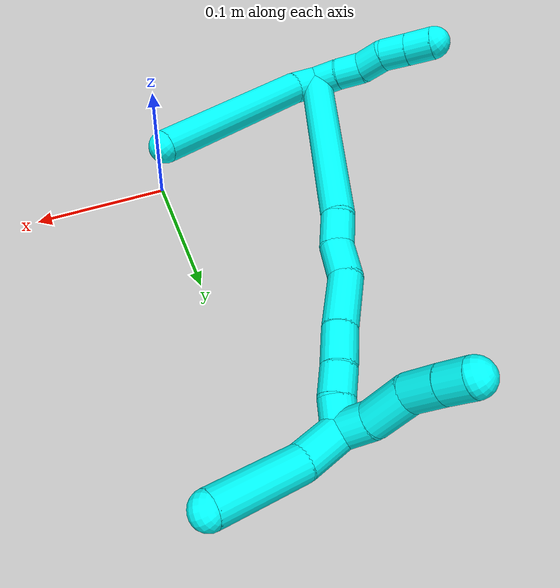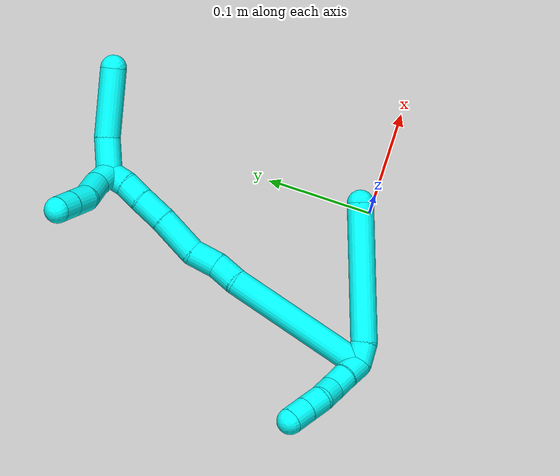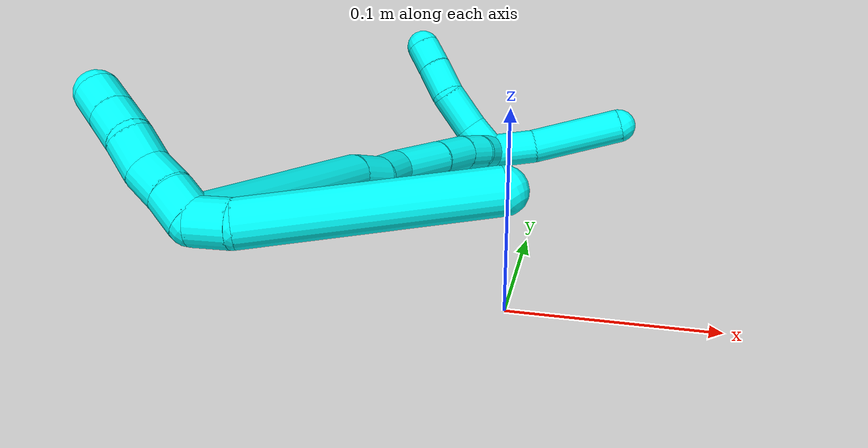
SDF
<sdf version="1.7">
 <world name="default">
  <model name="3">
   <static>0</static>
   <link name="3">
    <collision name="collision-cylinder-e_1_2_8">
     <pose>0.006964 0.003383 -0.006723 -2.67543 0.746601 -2.05177</pose>
     <geometry><cylinder><radius>0.0125</radius><length>0.020507</length></cylinder></geometry>
     <surface>
      <friction><ode><mu>1.16</mu><mu2>1.16</mu2><slip1>0</slip1><slip2>0</slip2></ode></friction>
      <contact><ode><kp>1e+06</kp><kd>1</kd><max_vel>0</max_vel><min_depth>0.001</min_depth></ode></contact>
     </surface>
    </collision>
    <visual name="visual-cylinder-e_1_2_8">
     <pose>0.006964 0.003383 -0.006723 -2.67543 0.746601 -2.05177</pose>
     <geometry><cylinder><radius>0.0125</radius><length>0.020507</length></cylinder></geometry>
     <material><ambient>0.003922 1 0.996078 1</ambient></material>
    </visual>
    <collision name="collision-cylinder-e_2_8_6">
     <pose>0.057292 0.044292 -0.043502 -2.24611 0.733887 -1.34982</pose>
     <geometry><cylinder><radius>0.0125</radius><length>0.129493</length></cylinder></geometry>
     <surface>
      <friction><ode><mu>1.16</mu><mu2>1.16</mu2><slip1>0</slip1><slip2>0</slip2></ode></friction>
      <contact><ode><kp>1e+06</kp><kd>1</kd><max_vel>0</max_vel><min_depth>0.001</min_depth></ode></contact>
     </surface>
    </collision>
    <visual name="visual-cylinder-e_2_8_6">
     <pose>0.057292 0.044292 -0.043502 -2.24611 0.733887 -1.34982</pose>
     <geometry><cylinder><radius>0.0125</radius><length>0.129493</length></cylinder></geometry>
     <material><ambient>0.003922 1 0.996078 1</ambient></material>
    </visual>
    <collision name="collision-cylinder-e_1_2_9">
     <pose>-0.001957 0.001058 0.009749 -0.108143 -0.196955 0.010695</pose>
     <geometry><cylinder><radius>0.0125</radius><length>0.02</length></cylinder></geometry>
     <surface>
      <friction><ode><mu>1.16</mu><mu2>1.16</mu2><slip1>0</slip1><slip2>0</slip2></ode></friction>
      <contact><ode><kp>1e+06</kp><kd>1</kd><max_vel>0</max_vel><min_depth>0.001</min_depth></ode></contact>
     </surface>
    </collision>
    <visual name="visual-cylinder-e_1_2_9">
     <pose>-0.001957 0.001058 0.009749 -0.108143 -0.196955 0.010695</pose>
     <geometry><cylinder><radius>0.0125</radius><length>0.02</length></cylinder></geometry>
     <material><ambient>0.003922 1 0.996078 1</ambient></material>
    </visual>
    <collision name="collision-cylinder-e_2_9_10">
     <pose>-0.006934 0.003165 0.028974 -0.110148 -0.306875 0.017052</pose>
     <geometry><cylinder><radius>0.0125</radius><length>0.02</length></cylinder></geometry>
     <surface>
      <friction><ode><mu>1.16</mu><mu2>1.16</mu2><slip1>0</slip1><slip2>0</slip2></ode></friction>
      <contact><ode><kp>1e+06</kp><kd>1</kd><max_vel>0</max_vel><min_depth>0.001</min_depth></ode></contact>
     </surface>
    </collision>
    <visual name="visual-cylinder-e_2_9_10">
     <pose>-0.006934 0.003165 0.028974 -0.110148 -0.306875 0.017052</pose>
     <geometry><cylinder><radius>0.0125</radius><length>0.02</length></cylinder></geometry>
     <material><ambient>0.003922 1 0.996078 1</ambient></material>
    </visual>
    <collision name="collision-cylinder-e_3_10_11">
     <pose>-0.009925 0.004604 0.048441 -0.039147 0.003065 -6e-05</pose>
     <geometry><cylinder><radius>0.0125</radius><length>0.02</length></cylinder></geometry>
     <surface>
      <friction><ode><mu>1.16</mu><mu2>1.16</mu2><slip1>0</slip1><slip2>0</slip2></ode></friction>
      <contact><ode><kp>1e+06</kp><kd>1</kd><max_vel>0</max_vel><min_depth>0.001</min_depth></ode></contact>
     </surface>
    </collision>
    <visual name="visual-cylinder-e_3_10_11">
     <pose>-0.009925 0.004604 0.048441 -0.039147 0.003065 -6e-05</pose>
     <geometry><cylinder><radius>0.0125</radius><length>0.02</length></cylinder></geometry>
     <material><ambient>0.003922 1 0.996078 1</ambient></material>
    </visual>
    <collision name="collision-cylinder-e_4_11_12">
     <pose>-0.012261 0.007122 0.067914 -0.220682 -0.239015 0.026606</pose>
     <geometry><cylinder><radius>0.0125</radius><length>0.02</length></cylinder></geometry>
     <surface>
      <friction><ode><mu>1.16</mu><mu2>1.16</mu2><slip1>0</slip1><slip2>0</slip2></ode></friction>
      <contact><ode><kp>1e+06</kp><kd>1</kd><max_vel>0</max_vel><min_depth>0.001</min_depth></ode></contact>
     </surface>
    </collision>
    <visual name="visual-cylinder-e_4_11_12">
     <pose>-0.012261 0.007122 0.067914 -0.220682 -0.239015 0.026606</pose>
     <geometry><cylinder><radius>0.0125</radius><length>0.02</length></cylinder></geometry>
     <material><ambient>0.003922 1 0.996078 1</ambient></material>
    </visual>
    <collision name="collision-cylinder-e_5_12_5">
     <pose>-0.016921 0.011263 0.086917 -0.208465 -0.231285 0.024302</pose>
     <geometry><cylinder><radius>0.0125</radius><length>0.02</length></cylinder></geometry>
     <surface>
      <friction><ode><mu>1.16</mu><mu2>1.16</mu2><slip1>0</slip1><slip2>0</slip2></ode></friction>
      <contact><ode><kp>1e+06</kp><kd>1</kd><max_vel>0</max_vel><min_depth>0.001</min_depth></ode></contact>
     </surface>
    </collision>
    <visual name="visual-cylinder-e_5_12_5">
     <pose>-0.016921 0.011263 0.086917 -0.208465 -0.231285 0.024302</pose>
     <geometry><cylinder><radius>0.0125</radius><length>0.02</length></cylinder></geometry>
     <material><ambient>0.003922 1 0.996078 1</ambient></material>
    </visual>
    <collision name="collision-cylinder-e_1_2_13">
     <pose>0.001407 0.06863 0.002226 -1.53837 0.020488 -0.019834</pose>
     <geometry><cylinder><radius>0.0125</radius><length>0.137362</length></cylinder></geometry>
     <surface>
      <friction><ode><mu>1.16</mu><mu2>1.16</mu2><slip1>0</slip1><slip2>0</slip2></ode></friction>
      <contact><ode><kp>1e+06</kp><kd>1</kd><max_vel>0</max_vel><min_depth>0.001</min_depth></ode></contact>
     </surface>
    </collision>
    <visual name="visual-cylinder-e_1_2_13">
     <pose>0.001407 0.06863 0.002226 -1.53837 0.020488 -0.019834</pose>
     <geometry><cylinder><radius>0.0125</radius><length>0.137362</length></cylinder></geometry>
     <material><ambient>0.003922 1 0.996078 1</ambient></material>
    </visual>
    <collision name="collision-cylinder-e_2_13_14">
     <pose>0.002638 0.149265 0.002136 -1.76147 -0.014434 0.017486</pose>
     <geometry><cylinder><radius>0.0125</radius><length>0.024454</length></cylinder></geometry>
     <surface>
      <friction><ode><mu>1.16</mu><mu2>1.16</mu2><slip1>0</slip1><slip2>0</slip2></ode></friction>
      <contact><ode><kp>1e+06</kp><kd>1</kd><max_vel>0</max_vel><min_depth>0.001</min_depth></ode></contact>
     </surface>
    </collision>
    <visual name="visual-cylinder-e_2_13_14">
     <pose>0.002638 0.149265 0.002136 -1.76147 -0.014434 0.017486</pose>
     <geometry><cylinder><radius>0.0125</radius><length>0.024454</length></cylinder></geometry>
     <material><ambient>0.003922 1 0.996078 1</ambient></material>
    </visual>
    <collision name="collision-cylinder-e_3_14_15">
     <pose>0.00175 0.17454 0.001237 -1.46438 -0.053224 0.047844</pose>
     <geometry><cylinder><radius>0.0125</radius><length>0.02673</length></cylinder></geometry>
     <surface>
      <friction><ode><mu>1.16</mu><mu2>1.16</mu2><slip1>0</slip1><slip2>0</slip2></ode></friction>
      <contact><ode><kp>1e+06</kp><kd>1</kd><max_vel>0</max_vel><min_depth>0.001</min_depth></ode></contact>
     </surface>
    </collision>
    <visual name="visual-cylinder-e_3_14_15">
     <pose>0.00175 0.17454 0.001237 -1.46438 -0.053224 0.047844</pose>
     <geometry><cylinder><radius>0.0125</radius><length>0.02673</length></cylinder></geometry>
     <material><ambient>0.003922 1 0.996078 1</ambient></material>
    </visual>
    <collision name="collision-cylinder-e_4_15_16">
     <pose>0.0055 0.208134 0.000545 -1.67418 0.214972 -0.23822</pose>
     <geometry><cylinder><radius>0.0125</radius><length>0.041828</length></cylinder></geometry>
     <surface>
      <friction><ode><mu>1.16</mu><mu2>1.16</mu2><slip1>0</slip1><slip2>0</slip2></ode></friction>
      <contact><ode><kp>1e+06</kp><kd>1</kd><max_vel>0</max_vel><min_depth>0.001</min_depth></ode></contact>
     </surface>
    </collision>
    <visual name="visual-cylinder-e_4_15_16">
     <pose>0.0055 0.208134 0.000545 -1.67418 0.214972 -0.23822</pose>
     <geometry><cylinder><radius>0.0125</radius><length>0.041828</length></cylinder></geometry>
     <material><ambient>0.003922 1 0.996078 1</ambient></material>
    </visual>
    <collision name="collision-cylinder-e_5_16_17">
     <pose>0.012021 0.242431 -0.002445 -1.63379 0.146027 -0.155491</pose>
     <geometry><cylinder><radius>0.0125</radius><length>0.028303</length></cylinder></geometry>
     <surface>
      <friction><ode><mu>1.16</mu><mu2>1.16</mu2><slip1>0</slip1><slip2>0</slip2></ode></friction>
      <contact><ode><kp>1e+06</kp><kd>1</kd><max_vel>0</max_vel><min_depth>0.001</min_depth></ode></contact>
     </surface>
    </collision>
    <visual name="visual-cylinder-e_5_16_17">
     <pose>0.012021 0.242431 -0.002445 -1.63379 0.146027 -0.155491</pose>
     <geometry><cylinder><radius>0.0125</radius><length>0.028303</length></cylinder></geometry>
     <material><ambient>0.003922 1 0.996078 1</ambient></material>
    </visual>
    <collision name="collision-cylinder-e_6_17_18">
     <pose>0.015177 0.266754 -0.004984 -1.7296 0.10427 -0.122256</pose>
     <geometry><cylinder><radius>0.0125</radius><length>0.021079</length></cylinder></geometry>
     <surface>
      <friction><ode><mu>1.16</mu><mu2>1.16</mu2><slip1>0</slip1><slip2>0</slip2></ode></friction>
      <contact><ode><kp>1e+06</kp><kd>1</kd><max_vel>0</max_vel><min_depth>0.001</min_depth></ode></contact>
     </surface>
    </collision>
    <visual name="visual-cylinder-e_6_17_18">
     <pose>0.015177 0.266754 -0.004984 -1.7296 0.10427 -0.122256</pose>
     <geometry><cylinder><radius>0.0125</radius><length>0.021079</length></cylinder></geometry>
     <material><ambient>0.003922 1 0.996078 1</ambient></material>
    </visual>
    <collision name="collision-cylinder-e_7_18_1">
     <pose>0.015587 0.287193 -0.007087 -1.61492 -0.067968 0.071033</pose>
     <geometry><cylinder><radius>0.0125</radius><length>0.020243</length></cylinder></geometry>
     <surface>
      <friction><ode><mu>1.16</mu><mu2>1.16</mu2><slip1>0</slip1><slip2>0</slip2></ode></friction>
      <contact><ode><kp>1e+06</kp><kd>1</kd><max_vel>0</max_vel><min_depth>0.001</min_depth></ode></contact>
     </surface>
    </collision>
    <visual name="visual-cylinder-e_7_18_1">
     <pose>0.015587 0.287193 -0.007087 -1.61492 -0.067968 0.071033</pose>
     <geometry><cylinder><radius>0.0125</radius><length>0.020243</length></cylinder></geometry>
     <material><ambient>0.003922 1 0.996078 1</ambient></material>
    </visual>
    <collision name="collision-cylinder-e_1_1_19">
     <pose>0.025891 0.307594 -0.015208 -2.21069 0.707433 -1.26789</pose>
     <geometry><cylinder><radius>0.0125</radius><length>0.033827</length></cylinder></geometry>
     <surface>
      <friction><ode><mu>1.16</mu><mu2>1.16</mu2><slip1>0</slip1><slip2>0</slip2></ode></friction>
      <contact><ode><kp>1e+06</kp><kd>1</kd><max_vel>0</max_vel><min_depth>0.001</min_depth></ode></contact>
     </surface>
    </collision>
    <visual name="visual-cylinder-e_1_1_19">
     <pose>0.025891 0.307594 -0.015208 -2.21069 0.707433 -1.26789</pose>
     <geometry><cylinder><radius>0.0125</radius><length>0.033827</length></cylinder></geometry>
     <material><ambient>0.003922 1 0.996078 1</ambient></material>
    </visual>
    <collision name="collision-cylinder-e_2_19_4">
     <pose>0.0633 0.332796 -0.036116 -2.29732 0.924696 -1.67464</pose>
     <geometry><cylinder><radius>0.0125</radius><length>0.066173</length></cylinder></geometry>
     <surface>
      <friction><ode><mu>1.16</mu><mu2>1.16</mu2><slip1>0</slip1><slip2>0</slip2></ode></friction>
      <contact><ode><kp>1e+06</kp><kd>1</kd><max_vel>0</max_vel><min_depth>0.001</min_depth></ode></contact>
     </surface>
    </collision>
    <visual name="visual-cylinder-e_2_19_4">
     <pose>0.0633 0.332796 -0.036116 -2.29732 0.924696 -1.67464</pose>
     <geometry><cylinder><radius>0.0125</radius><length>0.066173</length></cylinder></geometry>
     <material><ambient>0.003922 1 0.996078 1</ambient></material>
    </visual>
    <collision name="collision-cylinder-e_1_1_20">
     <pose>0.014696 0.297112 0.004364 0.014319 -0.017069 -0.000122</pose>
     <geometry><cylinder><radius>0.0125</radius><length>0.023798</length></cylinder></geometry>
     <surface>
      <friction><ode><mu>1.16</mu><mu2>1.16</mu2><slip1>0</slip1><slip2>0</slip2></ode></friction>
      <contact><ode><kp>1e+06</kp><kd>1</kd><max_vel>0</max_vel><min_depth>0.001</min_depth></ode></contact>
     </surface>
    </collision>
    <visual name="visual-cylinder-e_1_1_20">
     <pose>0.014696 0.297112 0.004364 0.014319 -0.017069 -0.000122</pose>
     <geometry><cylinder><radius>0.0125</radius><length>0.023798</length></cylinder></geometry>
     <material><ambient>0.003922 1 0.996078 1</ambient></material>
    </visual>
    <collision name="collision-cylinder-e_2_20_21">
     <pose>0.016922 0.293732 0.031354 0.209477 0.156121 0.016445</pose>
     <geometry><cylinder><radius>0.0125</radius><length>0.031243</length></cylinder></geometry>
     <surface>
      <friction><ode><mu>1.16</mu><mu2>1.16</mu2><slip1>0</slip1><slip2>0</slip2></ode></friction>
      <contact><ode><kp>1e+06</kp><kd>1</kd><max_vel>0</max_vel><min_depth>0.001</min_depth></ode></contact>
     </surface>
    </collision>
    <visual name="visual-cylinder-e_2_20_21">
     <pose>0.016922 0.293732 0.031354 0.209477 0.156121 0.016445</pose>
     <geometry><cylinder><radius>0.0125</radius><length>0.031243</length></cylinder></geometry>
     <material><ambient>0.003922 1 0.996078 1</ambient></material>
    </visual>
    <collision name="collision-cylinder-e_3_21_22">
     <pose>0.021216 0.292114 0.058653 -0.129557 0.1504 -0.009775</pose>
     <geometry><cylinder><radius>0.0125</radius><length>0.024897</length></cylinder></geometry>
     <surface>
      <friction><ode><mu>1.16</mu><mu2>1.16</mu2><slip1>0</slip1><slip2>0</slip2></ode></friction>
      <contact><ode><kp>1e+06</kp><kd>1</kd><max_vel>0</max_vel><min_depth>0.001</min_depth></ode></contact>
     </surface>
    </collision>
    <visual name="visual-cylinder-e_3_21_22">
     <pose>0.021216 0.292114 0.058653 -0.129557 0.1504 -0.009775</pose>
     <geometry><cylinder><radius>0.0125</radius><length>0.024897</length></cylinder></geometry>
     <material><ambient>0.003922 1 0.996078 1</ambient></material>
    </visual>
    <collision name="collision-cylinder-e_4_22_3">
     <pose>0.024261 0.29516 0.080712 -0.146735 0.117908 -0.008676</pose>
     <geometry><cylinder><radius>0.0125</radius><length>0.020062</length></cylinder></geometry>
     <surface>
      <friction><ode><mu>1.16</mu><mu2>1.16</mu2><slip1>0</slip1><slip2>0</slip2></ode></friction>
      <contact><ode><kp>1e+06</kp><kd>1</kd><max_vel>0</max_vel><min_depth>0.001</min_depth></ode></contact>
     </surface>
    </collision>
    <visual name="visual-cylinder-e_4_22_3">
     <pose>0.024261 0.29516 0.080712 -0.146735 0.117908 -0.008676</pose>
     <geometry><cylinder><radius>0.0125</radius><length>0.020062</length></cylinder></geometry>
     <material><ambient>0.003922 1 0.996078 1</ambient></material>
    </visual>
    <collision name="collision-sphere-3">
     <pose>0.025441 0.296617 0.090567 0 -0 0</pose>
     <geometry><sphere><radius>0.0125</radius></sphere></geometry>
     <surface>
      <friction><ode><mu>1.16</mu><mu2>1.16</mu2><slip1>0</slip1><slip2>0</slip2></ode></friction>
      <contact><ode><kp>1e+06</kp><kd>1</kd><max_vel>0</max_vel><min_depth>0.001</min_depth></ode></contact>
     </surface>
    </collision>
    <visual name="visual-sphere-3">
     <pose>0.025441 0.296617 0.090567 0 -0 0</pose>
     <geometry><sphere><radius>0.0125</radius></sphere></geometry>
     <material><ambient>0.003922 1 0.996078 1</ambient></material>
    </visual>
    <collision name="collision-sphere-22">
     <pose>0.023081 0.293704 0.070857 0 -0 0</pose>
     <geometry><sphere><radius>0.0125</radius></sphere></geometry>
     <surface>
      <friction><ode><mu>1.16</mu><mu2>1.16</mu2><slip1>0</slip1><slip2>0</slip2></ode></friction>
      <contact><ode><kp>1e+06</kp><kd>1</kd><max_vel>0</max_vel><min_depth>0.001</min_depth></ode></contact>
     </surface>
    </collision>
    <visual name="visual-sphere-22">
     <pose>0.023081 0.293704 0.070857 0 -0 0</pose>
     <geometry><sphere><radius>0.0125</radius></sphere></geometry>
     <material><ambient>0.003922 1 0.996078 1</ambient></material>
    </visual>
    <collision name="collision-sphere-21">
     <pose>0.019351 0.290523 0.046448 0 -0 0</pose>
     <geometry><sphere><radius>0.0125</radius></sphere></geometry>
     <surface>
      <friction><ode><mu>1.16</mu><mu2>1.16</mu2><slip1>0</slip1><slip2>0</slip2></ode></friction>
      <contact><ode><kp>1e+06</kp><kd>1</kd><max_vel>0</max_vel><min_depth>0.001</min_depth></ode></contact>
     </surface>
    </collision>
    <visual name="visual-sphere-21">
     <pose>0.019351 0.290523 0.046448 0 -0 0</pose>
     <geometry><sphere><radius>0.0125</radius></sphere></geometry>
     <material><ambient>0.003922 1 0.996078 1</ambient></material>
    </visual>
    <collision name="collision-sphere-20">
     <pose>0.014493 0.296941 0.01626 0 -0 0</pose>
     <geometry><sphere><radius>0.0125</radius></sphere></geometry>
     <surface>
      <friction><ode><mu>1.16</mu><mu2>1.16</mu2><slip1>0</slip1><slip2>0</slip2></ode></friction>
      <contact><ode><kp>1e+06</kp><kd>1</kd><max_vel>0</max_vel><min_depth>0.001</min_depth></ode></contact>
     </surface>
    </collision>
    <visual name="visual-sphere-20">
     <pose>0.014493 0.296941 0.01626 0 -0 0</pose>
     <geometry><sphere><radius>0.0125</radius></sphere></geometry>
     <material><ambient>0.003922 1 0.996078 1</ambient></material>
    </visual>
    <collision name="collision-sphere-4">
     <pose>0.089718 0.347686 -0.049349 0 -0 0</pose>
     <geometry><sphere><radius>0.0125</radius></sphere></geometry>
     <surface>
      <friction><ode><mu>1.16</mu><mu2>1.16</mu2><slip1>0</slip1><slip2>0</slip2></ode></friction>
      <contact><ode><kp>1e+06</kp><kd>1</kd><max_vel>0</max_vel><min_depth>0.001</min_depth></ode></contact>
     </surface>
    </collision>
    <visual name="visual-sphere-4">
     <pose>0.089718 0.347686 -0.049349 0 -0 0</pose>
     <geometry><sphere><radius>0.0125</radius></sphere></geometry>
     <material><ambient>0.003922 1 0.996078 1</ambient></material>
    </visual>
    <collision name="collision-sphere-11">
     <pose>-0.009894 0.004995 0.058433 0 -0 0</pose>
     <geometry><sphere><radius>0.0125</radius></sphere></geometry>
     <surface>
      <friction><ode><mu>1.16</mu><mu2>1.16</mu2><slip1>0</slip1><slip2>0</slip2></ode></friction>
      <contact><ode><kp>1e+06</kp><kd>1</kd><max_vel>0</max_vel><min_depth>0.001</min_depth></ode></contact>
     </surface>
    </collision>
    <visual name="visual-sphere-11">
     <pose>-0.009894 0.004995 0.058433 0 -0 0</pose>
     <geometry><sphere><radius>0.0125</radius></sphere></geometry>
     <material><ambient>0.003922 1 0.996078 1</ambient></material>
    </visual>
    <collision name="collision-sphere-10">
     <pose>-0.009955 0.004213 0.038449 0 -0 0</pose>
     <geometry><sphere><radius>0.0125</radius></sphere></geometry>
     <surface>
      <friction><ode><mu>1.16</mu><mu2>1.16</mu2><slip1>0</slip1><slip2>0</slip2></ode></friction>
      <contact><ode><kp>1e+06</kp><kd>1</kd><max_vel>0</max_vel><min_depth>0.001</min_depth></ode></contact>
     </surface>
    </collision>
    <visual name="visual-sphere-10">
     <pose>-0.009955 0.004213 0.038449 0 -0 0</pose>
     <geometry><sphere><radius>0.0125</radius></sphere></geometry>
     <material><ambient>0.003922 1 0.996078 1</ambient></material>
    </visual>
    <collision name="collision-sphere-6">
     <pose>0.100657 0.081818 -0.073559 0 -0 0</pose>
     <geometry><sphere><radius>0.0125</radius></sphere></geometry>
     <surface>
      <friction><ode><mu>1.16</mu><mu2>1.16</mu2><slip1>0</slip1><slip2>0</slip2></ode></friction>
      <contact><ode><kp>1e+06</kp><kd>1</kd><max_vel>0</max_vel><min_depth>0.001</min_depth></ode></contact>
     </surface>
    </collision>
    <visual name="visual-sphere-6">
     <pose>0.100657 0.081818 -0.073559 0 -0 0</pose>
     <geometry><sphere><radius>0.0125</radius></sphere></geometry>
     <material><ambient>0.003922 1 0.996078 1</ambient></material>
    </visual>
    <collision name="collision-sphere-9">
     <pose>-0.003914 0.002117 0.019499 0 -0 0</pose>
     <geometry><sphere><radius>0.0125</radius></sphere></geometry>
     <surface>
      <friction><ode><mu>1.16</mu><mu2>1.16</mu2><slip1>0</slip1><slip2>0</slip2></ode></friction>
      <contact><ode><kp>1e+06</kp><kd>1</kd><max_vel>0</max_vel><min_depth>0.001</min_depth></ode></contact>
     </surface>
    </collision>
    <visual name="visual-sphere-9">
     <pose>-0.003914 0.002117 0.019499 0 -0 0</pose>
     <geometry><sphere><radius>0.0125</radius></sphere></geometry>
     <material><ambient>0.003922 1 0.996078 1</ambient></material>
    </visual>
    <collision name="collision-sphere-2">
     <geometry><sphere><radius>0.0125</radius></sphere></geometry>
     <surface>
      <friction><ode><mu>1.16</mu><mu2>1.16</mu2><slip1>0</slip1><slip2>0</slip2></ode></friction>
      <contact><ode><kp>1e+06</kp><kd>1</kd><max_vel>0</max_vel><min_depth>0.001</min_depth></ode></contact>
     </surface>
    </collision>
    <visual name="visual-sphere-2">
     <geometry><sphere><radius>0.0125</radius></sphere></geometry>
     <material><ambient>0.003922 1 0.996078 1</ambient></material>
    </visual>
    <collision name="collision-sphere-19">
     <pose>0.036883 0.317905 -0.022884 0 -0 0</pose>
     <geometry><sphere><radius>0.0125</radius></sphere></geometry>
     <surface>
      <friction><ode><mu>1.16</mu><mu2>1.16</mu2><slip1>0</slip1><slip2>0</slip2></ode></friction>
      <contact><ode><kp>1e+06</kp><kd>1</kd><max_vel>0</max_vel><min_depth>0.001</min_depth></ode></contact>
     </surface>
    </collision>
    <visual name="visual-sphere-19">
     <pose>0.036883 0.317905 -0.022884 0 -0 0</pose>
     <geometry><sphere><radius>0.0125</radius></sphere></geometry>
     <material><ambient>0.003922 1 0.996078 1</ambient></material>
    </visual>
    <collision name="collision-sphere-8">
     <pose>0.013927 0.006766 -0.013446 0 -0 0</pose>
     <geometry><sphere><radius>0.0125</radius></sphere></geometry>
     <surface>
      <friction><ode><mu>1.16</mu><mu2>1.16</mu2><slip1>0</slip1><slip2>0</slip2></ode></friction>
      <contact><ode><kp>1e+06</kp><kd>1</kd><max_vel>0</max_vel><min_depth>0.001</min_depth></ode></contact>
     </surface>
    </collision>
    <visual name="visual-sphere-8">
     <pose>0.013927 0.006766 -0.013446 0 -0 0</pose>
     <geometry><sphere><radius>0.0125</radius></sphere></geometry>
     <material><ambient>0.003922 1 0.996078 1</ambient></material>
    </visual>
    <collision name="collision-sphere-12">
     <pose>-0.014629 0.009249 0.077394 0 -0 0</pose>
     <geometry><sphere><radius>0.0125</radius></sphere></geometry>
     <surface>
      <friction><ode><mu>1.16</mu><mu2>1.16</mu2><slip1>0</slip1><slip2>0</slip2></ode></friction>
      <contact><ode><kp>1e+06</kp><kd>1</kd><max_vel>0</max_vel><min_depth>0.001</min_depth></ode></contact>
     </surface>
    </collision>
    <visual name="visual-sphere-12">
     <pose>-0.014629 0.009249 0.077394 0 -0 0</pose>
     <geometry><sphere><radius>0.0125</radius></sphere></geometry>
     <material><ambient>0.003922 1 0.996078 1</ambient></material>
    </visual>
    <collision name="collision-sphere-5">
     <pose>-0.019213 0.013278 0.09644 0 -0 0</pose>
     <geometry><sphere><radius>0.0125</radius></sphere></geometry>
     <surface>
      <friction><ode><mu>1.16</mu><mu2>1.16</mu2><slip1>0</slip1><slip2>0</slip2></ode></friction>
      <contact><ode><kp>1e+06</kp><kd>1</kd><max_vel>0</max_vel><min_depth>0.001</min_depth></ode></contact>
     </surface>
    </collision>
    <visual name="visual-sphere-5">
     <pose>-0.019213 0.013278 0.09644 0 -0 0</pose>
     <geometry><sphere><radius>0.0125</radius></sphere></geometry>
     <material><ambient>0.003922 1 0.996078 1</ambient></material>
    </visual>
    <collision name="collision-sphere-13">
     <pose>0.002814 0.137261 0.004453 0 -0 0</pose>
     <geometry><sphere><radius>0.0125</radius></sphere></geometry>
     <surface>
      <friction><ode><mu>1.16</mu><mu2>1.16</mu2><slip1>0</slip1><slip2>0</slip2></ode></friction>
      <contact><ode><kp>1e+06</kp><kd>1</kd><max_vel>0</max_vel><min_depth>0.001</min_depth></ode></contact>
     </surface>
    </collision>
    <visual name="visual-sphere-13">
     <pose>0.002814 0.137261 0.004453 0 -0 0</pose>
     <geometry><sphere><radius>0.0125</radius></sphere></geometry>
     <material><ambient>0.003922 1 0.996078 1</ambient></material>
    </visual>
    <collision name="collision-sphere-14">
     <pose>0.002461 0.161269 -0.000181 0 -0 0</pose>
     <geometry><sphere><radius>0.0125</radius></sphere></geometry>
     <surface>
      <friction><ode><mu>1.16</mu><mu2>1.16</mu2><slip1>0</slip1><slip2>0</slip2></ode></friction>
      <contact><ode><kp>1e+06</kp><kd>1</kd><max_vel>0</max_vel><min_depth>0.001</min_depth></ode></contact>
     </surface>
    </collision>
    <visual name="visual-sphere-14">
     <pose>0.002461 0.161269 -0.000181 0 -0 0</pose>
     <geometry><sphere><radius>0.0125</radius></sphere></geometry>
     <material><ambient>0.003922 1 0.996078 1</ambient></material>
    </visual>
    <collision name="collision-sphere-15">
     <pose>0.001039 0.187811 0.002654 0 -0 0</pose>
     <geometry><sphere><radius>0.0125</radius></sphere></geometry>
     <surface>
      <friction><ode><mu>1.16</mu><mu2>1.16</mu2><slip1>0</slip1><slip2>0</slip2></ode></friction>
      <contact><ode><kp>1e+06</kp><kd>1</kd><max_vel>0</max_vel><min_depth>0.001</min_depth></ode></contact>
     </surface>
    </collision>
    <visual name="visual-sphere-15">
     <pose>0.001039 0.187811 0.002654 0 -0 0</pose>
     <geometry><sphere><radius>0.0125</radius></sphere></geometry>
     <material><ambient>0.003922 1 0.996078 1</ambient></material>
    </visual>
    <collision name="collision-sphere-16">
     <pose>0.009962 0.228458 -0.001563 0 -0 0</pose>
     <geometry><sphere><radius>0.0125</radius></sphere></geometry>
     <surface>
      <friction><ode><mu>1.16</mu><mu2>1.16</mu2><slip1>0</slip1><slip2>0</slip2></ode></friction>
      <contact><ode><kp>1e+06</kp><kd>1</kd><max_vel>0</max_vel><min_depth>0.001</min_depth></ode></contact>
     </surface>
    </collision>
    <visual name="visual-sphere-16">
     <pose>0.009962 0.228458 -0.001563 0 -0 0</pose>
     <geometry><sphere><radius>0.0125</radius></sphere></geometry>
     <material><ambient>0.003922 1 0.996078 1</ambient></material>
    </visual>
    <collision name="collision-sphere-17">
     <pose>0.01408 0.256404 -0.003326 0 -0 0</pose>
     <geometry><sphere><radius>0.0125</radius></sphere></geometry>
     <surface>
      <friction><ode><mu>1.16</mu><mu2>1.16</mu2><slip1>0</slip1><slip2>0</slip2></ode></friction>
      <contact><ode><kp>1e+06</kp><kd>1</kd><max_vel>0</max_vel><min_depth>0.001</min_depth></ode></contact>
     </surface>
    </collision>
    <visual name="visual-sphere-17">
     <pose>0.01408 0.256404 -0.003326 0 -0 0</pose>
     <geometry><sphere><radius>0.0125</radius></sphere></geometry>
     <material><ambient>0.003922 1 0.996078 1</ambient></material>
    </visual>
    <collision name="collision-sphere-18">
     <pose>0.016274 0.277105 -0.006641 0 -0 0</pose>
     <geometry><sphere><radius>0.0125</radius></sphere></geometry>
     <surface>
      <friction><ode><mu>1.16</mu><mu2>1.16</mu2><slip1>0</slip1><slip2>0</slip2></ode></friction>
      <contact><ode><kp>1e+06</kp><kd>1</kd><max_vel>0</max_vel><min_depth>0.001</min_depth></ode></contact>
     </surface>
    </collision>
    <visual name="visual-sphere-18">
     <pose>0.016274 0.277105 -0.006641 0 -0 0</pose>
     <geometry><sphere><radius>0.0125</radius></sphere></geometry>
     <material><ambient>0.003922 1 0.996078 1</ambient></material>
    </visual>
    <collision name="collision-sphere-1">
     <pose>0.014899 0.297282 -0.007532 0 -0 0</pose>
     <geometry><sphere><radius>0.0125</radius></sphere></geometry>
     <surface>
      <friction><ode><mu>1.16</mu><mu2>1.16</mu2><slip1>0</slip1><slip2>0</slip2></ode></friction>
      <contact><ode><kp>1e+06</kp><kd>1</kd><max_vel>0</max_vel><min_depth>0.001</min_depth></ode></contact>
     </surface>
    </collision>
    <visual name="visual-sphere-1">
     <pose>0.014899 0.297282 -0.007532 0 -0 0</pose>
     <geometry><sphere><radius>0.0125</radius></sphere></geometry>
     <material><ambient>0.003922 1 0.996078 1</ambient></material>
    </visual>
    <inertial>
     <pose>0.020093 0.15062 0.000565 0 -0 0</pose>
     <mass>0.75</mass>
     <inertia>
      <ixx>0.000138</ixx>
      <ixy>0</ixy>
      <ixz>0</ixz>
      <iyy>-1.4e-05</iyy>
      <iyz>0</iyz>
      <izz>-0.000514</izz>
     </inertia>
    </inertial>
   </link>
   <pose>-0.145383 -0.033355 0.044977 -0.170021 -0.802692 -0.175809</pose>
  </model>
 </world>
</sdf>
